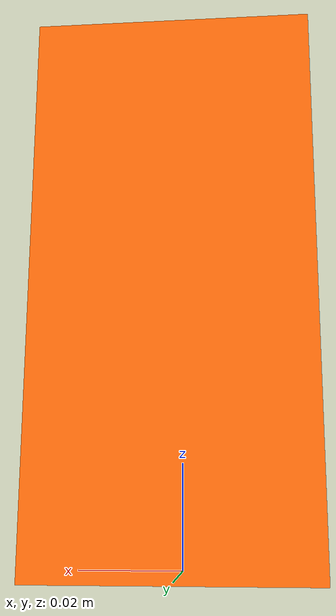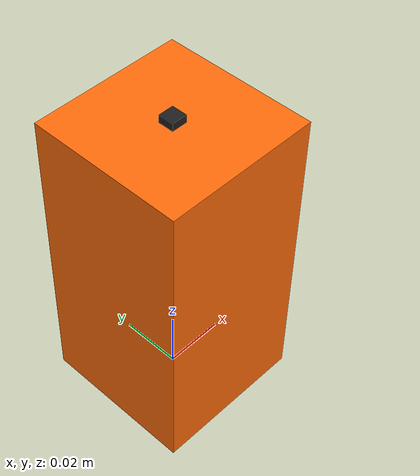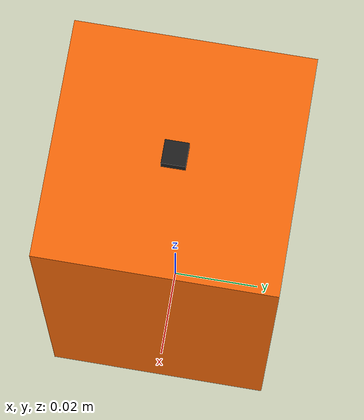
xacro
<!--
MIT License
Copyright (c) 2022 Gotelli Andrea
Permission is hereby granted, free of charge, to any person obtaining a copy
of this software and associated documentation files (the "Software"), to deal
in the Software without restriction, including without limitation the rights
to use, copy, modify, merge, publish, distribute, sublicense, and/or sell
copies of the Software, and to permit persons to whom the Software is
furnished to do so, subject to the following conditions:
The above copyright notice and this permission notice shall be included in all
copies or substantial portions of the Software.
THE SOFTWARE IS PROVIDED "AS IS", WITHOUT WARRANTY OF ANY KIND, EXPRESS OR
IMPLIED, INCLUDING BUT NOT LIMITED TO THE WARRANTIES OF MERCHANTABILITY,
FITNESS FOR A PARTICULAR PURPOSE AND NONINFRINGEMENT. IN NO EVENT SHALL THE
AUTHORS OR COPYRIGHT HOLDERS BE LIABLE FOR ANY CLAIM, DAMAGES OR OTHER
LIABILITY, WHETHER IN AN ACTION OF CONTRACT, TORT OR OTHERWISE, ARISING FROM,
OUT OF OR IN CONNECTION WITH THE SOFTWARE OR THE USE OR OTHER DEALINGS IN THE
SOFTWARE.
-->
<?xml version="1.0"?>

<!-- Revolute-Revolute Manipulator -->
<robot name="robot_limb" xmlns:xacro="http://www.ros.org/wiki/xacro">

    <!-- Position of the base joint -->
    <xacro:arg name="x" default="0.0"/>
    <xacro:arg name="y" default="0.0"/>
    <xacro:arg name="z" default="0.0"/>
    <xacro:arg name="roll" default="0.0"/>
    <xacro:arg name="pitch" default="0.0"/>
    <xacro:arg name="yaw" default="0.0"/>

    <xacro:arg name="widthx" default="0.05"/>
    <xacro:arg name="widthy" default="0.05"/>
    <xacro:arg name="height" default="0.1"/>

    <xacro:arg name="mass" default="0.1"/>

    <xacro:arg name="axis" default="0 0 1"/>

    <xacro:arg name="a_x" default="0.0"/>
    <xacro:arg name="a_y" default="0.0"/>
    <xacro:arg name="a_z" default="$(arg height)"/>
    <xacro:arg name="a_roll" default="0.0"/>
    <xacro:arg name="a_pitch" default="0.0"/>
    <xacro:arg name="a_yaw" default="0.0"/>

    <!-- Constants for joint dimensions -->
    <xacro:property name="mass" value="$(arg mass)" />
    <xacro:property name="axis" value="$(arg axis)" />
    <xacro:property name="widthx" value="$(arg widthx)" />
    <xacro:property name="widthy" value="$(arg widthy)" />
    <xacro:property name="height" value="$(arg height)" />

    <xacro:property name="ap_relative_pose" value="$(arg a_x) $(arg a_y) $(arg a_z)" />
    <xacro:property name="ap_relative_orientation" value="$(arg a_roll) $(arg a_pitch) $(arg a_yaw)" />

    <!-- ros_control plugin -->
    <gazebo>
        <plugin name="gazebo_ros_control" filename="libgazebo_ros_control.so">
            <robotSimType>gazebo_ros_control/DefaultRobotHWSim</robotSimType>
        </plugin>
    </gazebo>

    <!-- Used for fixing robot to Gazebo 'base_link' -->
    <link name="world"/>

    <!-- Base Link -->
    <link name="base_joint_body">
        <collision name="base_joint_body_collision">
            <origin xyz="0 0 ${height/2}" rpy="0 0 0"/>
            <geometry>
                <box size="${widthx} ${widthy} ${height}"/>
            </geometry>
            <contact_coefficients mu="0.0" kp="0.0" kd="0.0"/>
        </collision>

        <visual name="base_joint_body_visual">
            <origin xyz="0 0 ${height/2}" rpy="0 0 0"/>
            <geometry>
                <box size="${widthx} ${widthy} ${height}"/>
            </geometry>
            <material name="orange"/>
        </visual>

        <inertial>
        <origin xyz="0 0 ${height/2}" rpy="0 0 0"/>
        <mass value="${mass}"/>
        <inertia
        ixx="${mass / 12.0 * (widthy*widthy + height*height)}" ixy="0.0" ixz="0.0"
        iyy="${mass / 12.0 * (height*height + widthx*widthx)}" iyz="0.0"
        izz="${mass / 12.0 * (widthx*widthx + widthy*widthy)}"/>
        </inertial>
    </link>

    <!-- Link1 Properties-->
    <gazebo reference="base_joint_body">
        <material>Gazebo/Orange</material>
    </gazebo>

    <material name="orange">
        <color rgba="${255/255} ${108/255} ${10/255} 1.0"/>
    </material>

    <joint name="base_joint" type="prismatic">
        <parent link="world"/>
        <child link="base_joint_body"/>
        <limit effort="1000.0" lower="-1" upper="0.4" velocity="0.5"/>
        <axis xyz="${axis}"/>
        <origin xyz="$(arg x) $(arg y) $(arg z)" rpy="0 0 $(arg yaw)"/>
    </joint>

    <link name="attach_point">
        <collision name="attach_point_collision">
            <origin xyz="0 0 0" rpy="0 0 0"/>
            <geometry>
                <box size="0.005 0.005 0.005"/>
            </geometry>
        </collision>

        <visual name="attach_point_visual">
            <origin xyz="0 0 0" rpy="0 0 0"/>
            <geometry>
                <box size="0.005 0.005 0.005"/>
            </geometry>
        </visual>

        <inertial>
        <origin xyz="0 0 0" rpy="0 0 0"/>
        <mass value="${mass/10}"/>
        <inertia
        ixx="${mass / 12.0 * 2*(0.005**2)}" ixy="0.0" ixz="0.0"
        iyy="${mass / 12.0 * 2*(0.005**2)}" iyz="0.0"
        izz="${mass / 12.0 * 2*(0.005**2)}"/>
        </inertial>
    </link>

    <gazebo reference="attach_point">
        <material>Gazebo/Black</material>
    </gazebo>

    <joint name="fix_rod_to_joint" type="fixed">
        <parent link="base_joint_body"/>
        <child link="attach_point"/>
        <origin xyz="${ap_relative_pose}" rpy="${ap_relative_orientation}"/>
    </joint>

<!-- Tell gazebo not to lump fixed joint togheter-->
    <gazebo reference="fix_rod_to_joint">
        <preserveFixedJoint>true</preserveFixedJoint>
    </gazebo>

    <transmission name="base_joint_transmission">
        <type>transmission_interface/SimpleTransmission</type>
        <joint name="base_joint">
            <hardwareInterface>hardware_interface/EffortJointInterface</hardwareInterface>
        </joint>
        <actuator name="base_joint_motor">
            <hardwareInterface>hardware_interface/EffortJointInterface</hardwareInterface>
            <mechanicalReduction>1</mechanicalReduction>
        </actuator>
    </transmission>

</robot>
